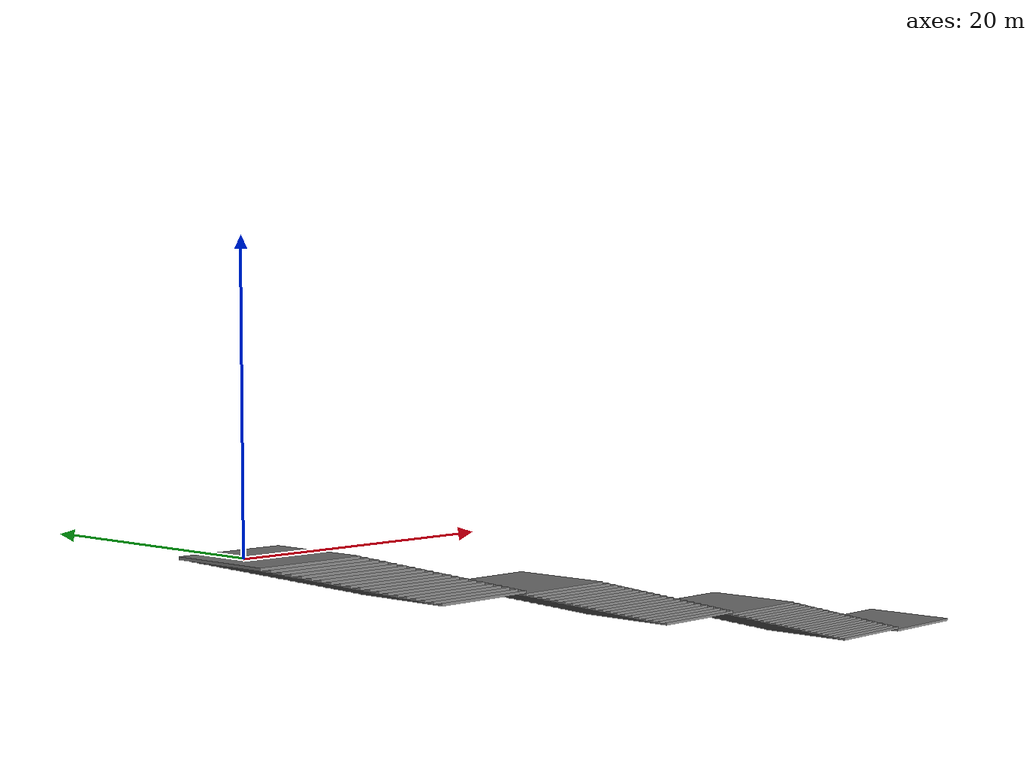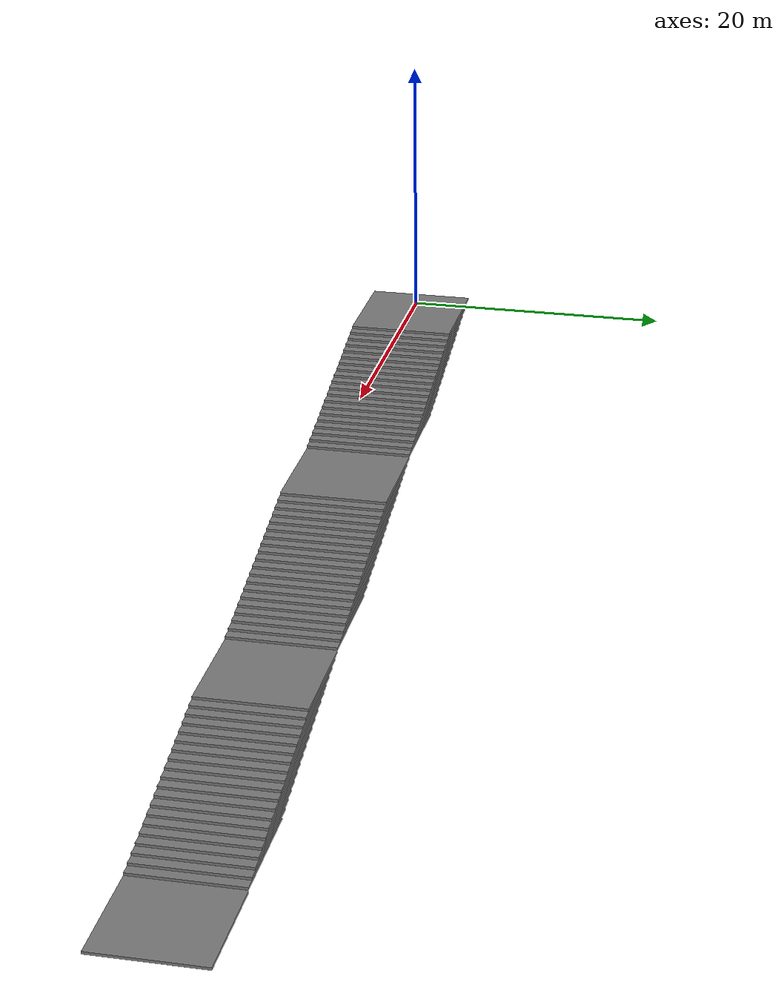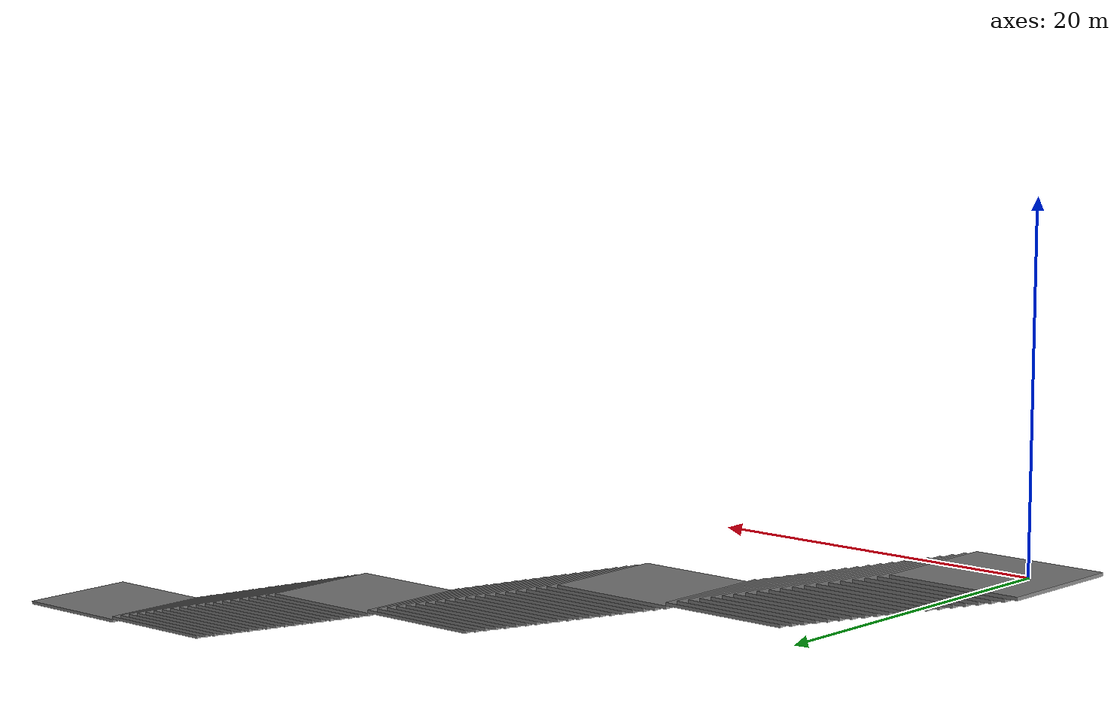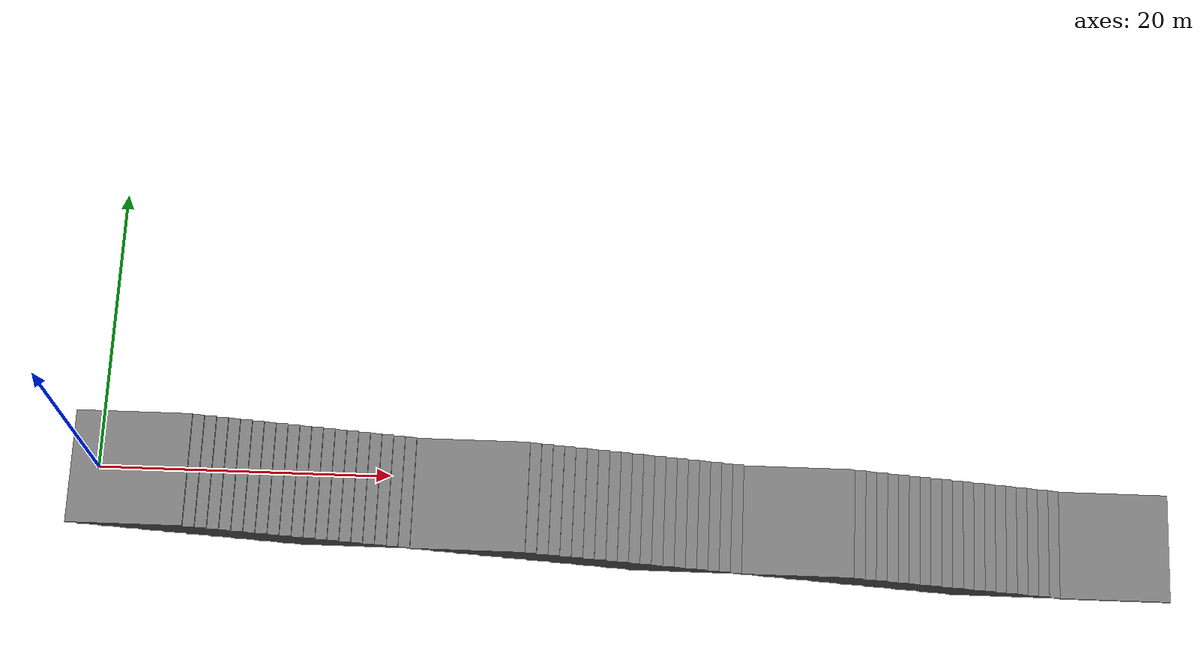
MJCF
<mujoco>

    <asset>
        <mesh file="assets/stairs_001.stl"/>
        <mesh file="assets/stairs_002.stl"/>
        <mesh file="assets/stairs_003.stl"/>
        <mesh file="assets/stairs_004.stl"/>
        <mesh file="assets/stairs_005.stl"/>
        <mesh file="assets/stairs_006.stl"/>
        <mesh file="assets/stairs_007.stl"/>
        <mesh file="assets/stairs_008.stl"/>
        <mesh file="assets/stairs_009.stl"/>
        <mesh file="assets/stairs_010.stl"/>
        <mesh file="assets/stairs_011.stl"/>
        <mesh file="assets/stairs_012.stl"/>
        <mesh file="assets/stairs_013.stl"/>
        <mesh file="assets/stairs_014.stl"/>
        <mesh file="assets/stairs_015.stl"/>
        <mesh file="assets/stairs_016.stl"/>
        <mesh file="assets/stairs_017.stl"/>
        <mesh file="assets/stairs_018.stl"/>
        <mesh file="assets/stairs_019.stl"/>
        <mesh file="assets/stairs_020.stl"/>
        <mesh file="assets/stairs_021.stl"/>
        <mesh file="assets/stairs_022.stl"/>
        <mesh file="assets/stairs_023.stl"/>
        <mesh file="assets/stairs_024.stl"/>
        <mesh file="assets/stairs_025.stl"/>
        <mesh file="assets/stairs_026.stl"/>
        <mesh file="assets/stairs_027.stl"/>
        <mesh file="assets/stairs_028.stl"/>
        <mesh file="assets/stairs_029.stl"/>
        <mesh file="assets/stairs_030.stl"/>
        <mesh file="assets/stairs_031.stl"/>
        <mesh file="assets/stairs_032.stl"/>
        <mesh file="assets/stairs_033.stl"/>
        <mesh file="assets/stairs_034.stl"/>
        <mesh file="assets/stairs_035.stl"/>
        <mesh file="assets/stairs_036.stl"/>
        <mesh file="assets/stairs_037.stl"/>
        <mesh file="assets/stairs_038.stl"/>
        <mesh file="assets/stairs_039.stl"/>
        <mesh file="assets/stairs_040.stl"/>
        <mesh file="assets/stairs_041.stl"/>
        <mesh file="assets/stairs_042.stl"/>
        <mesh file="assets/stairs_043.stl"/>
        <mesh file="assets/stairs_044.stl"/>
        <mesh file="assets/stairs_045.stl"/>
        <mesh file="assets/stairs_046.stl"/>
        <mesh file="assets/stairs_047.stl"/>
        <mesh file="assets/stairs_048.stl"/>
        <mesh file="assets/stairs_049.stl"/>
        <mesh file="assets/stairs_050.stl"/>
        <mesh file="assets/stairs_051.stl"/>
        <mesh file="assets/stairs_052.stl"/>
        <mesh file="assets/stairs_053.stl"/>
        <mesh file="assets/stairs_054.stl"/>
        <mesh file="assets/stairs_055.stl"/>
        <mesh file="assets/stairs_056.stl"/>
        <mesh file="assets/stairs_057.stl"/>
        <mesh file="assets/stairs_058.stl"/>
        <mesh file="assets/stairs_059.stl"/>
        <mesh file="assets/stairs_060.stl"/>
        <mesh file="assets/stairs_061.stl"/>
   </asset>

    <worldbody>
        <geom type="mesh" mesh="stairs_001"/>
        <geom type="mesh" mesh="stairs_002"/>
        <geom type="mesh" mesh="stairs_003"/>
        <geom type="mesh" mesh="stairs_004"/>
        <geom type="mesh" mesh="stairs_005"/>
        <geom type="mesh" mesh="stairs_006"/>
        <geom type="mesh" mesh="stairs_007"/>
        <geom type="mesh" mesh="stairs_008"/>
        <geom type="mesh" mesh="stairs_009"/>
        <geom type="mesh" mesh="stairs_010"/>
        <geom type="mesh" mesh="stairs_011"/>
        <geom type="mesh" mesh="stairs_012"/>
        <geom type="mesh" mesh="stairs_013"/>
        <geom type="mesh" mesh="stairs_014"/>
        <geom type="mesh" mesh="stairs_015"/>
        <geom type="mesh" mesh="stairs_016"/>
        <geom type="mesh" mesh="stairs_017"/>
        <geom type="mesh" mesh="stairs_018"/>
        <geom type="mesh" mesh="stairs_019"/>
        <geom type="mesh" mesh="stairs_020"/>
        <geom type="mesh" mesh="stairs_021"/>
        <geom type="mesh" mesh="stairs_022"/>
        <geom type="mesh" mesh="stairs_023"/>
        <geom type="mesh" mesh="stairs_024"/>
        <geom type="mesh" mesh="stairs_025"/>
        <geom type="mesh" mesh="stairs_026"/>
        <geom type="mesh" mesh="stairs_027"/>
        <geom type="mesh" mesh="stairs_028"/>
        <geom type="mesh" mesh="stairs_029"/>
        <geom type="mesh" mesh="stairs_030"/>
        <geom type="mesh" mesh="stairs_031"/>
        <geom type="mesh" mesh="stairs_032"/>
        <geom type="mesh" mesh="stairs_033"/>
        <geom type="mesh" mesh="stairs_034"/>
        <geom type="mesh" mesh="stairs_035"/>
        <geom type="mesh" mesh="stairs_036"/>
        <geom type="mesh" mesh="stairs_037"/>
        <geom type="mesh" mesh="stairs_038"/>
        <geom type="mesh" mesh="stairs_039"/>
        <geom type="mesh" mesh="stairs_040"/>
        <geom type="mesh" mesh="stairs_041"/>
        <geom type="mesh" mesh="stairs_042"/>
        <geom type="mesh" mesh="stairs_043"/>
        <geom type="mesh" mesh="stairs_044"/>
        <geom type="mesh" mesh="stairs_045"/>
        <geom type="mesh" mesh="stairs_046"/>
        <geom type="mesh" mesh="stairs_047"/>
        <geom type="mesh" mesh="stairs_048"/>
        <geom type="mesh" mesh="stairs_049"/>
        <geom type="mesh" mesh="stairs_050"/>
        <geom type="mesh" mesh="stairs_051"/>
        <geom type="mesh" mesh="stairs_052"/>
        <geom type="mesh" mesh="stairs_053"/>
        <geom type="mesh" mesh="stairs_054"/>
        <geom type="mesh" mesh="stairs_055"/>
        <geom type="mesh" mesh="stairs_056"/>
        <geom type="mesh" mesh="stairs_057"/>
        <geom type="mesh" mesh="stairs_058"/>
        <geom type="mesh" mesh="stairs_059"/>
        <geom type="mesh" mesh="stairs_060"/>
        <geom type="mesh" mesh="stairs_061"/>
    </worldbody>

</mujoco>
